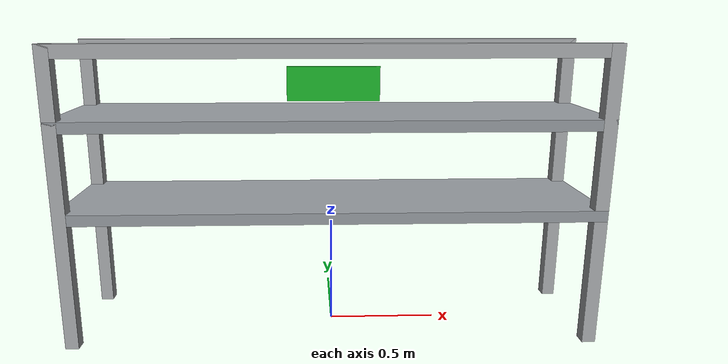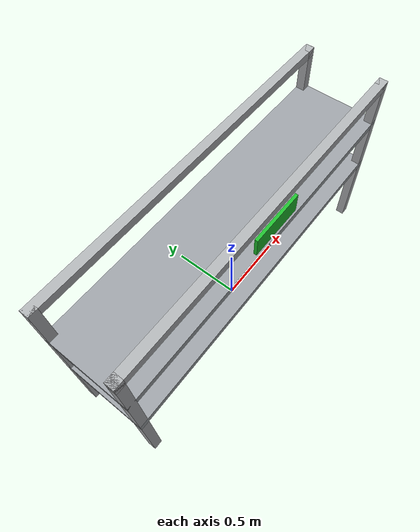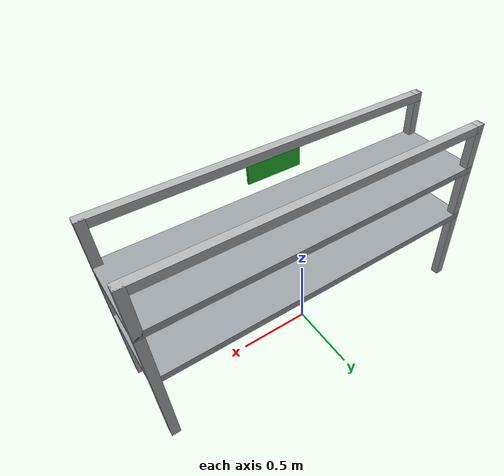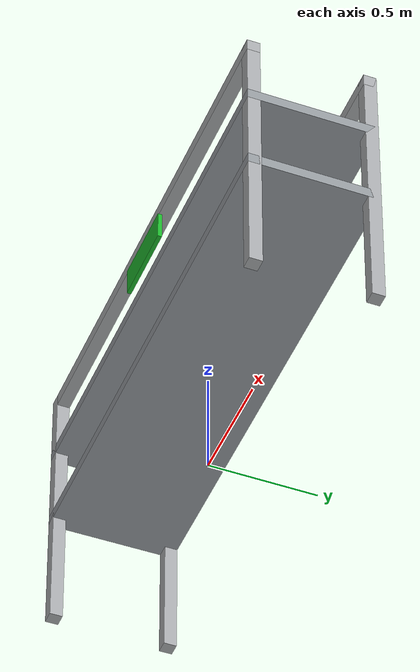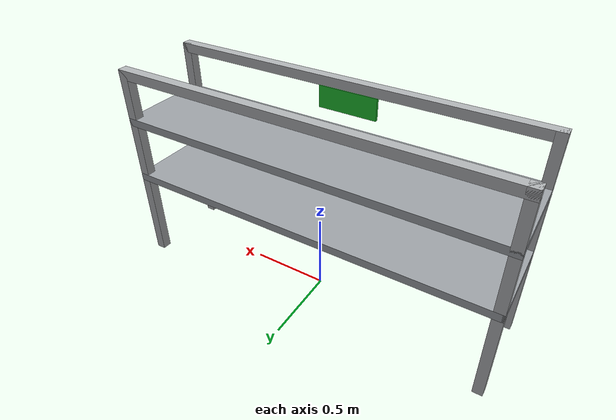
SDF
<?xml version="1.0"?>
<sdf version="1.10">
  <model name="l_workcell_rack">
    <static>true</static>
    <link name="rack">
      <collision name="lower_deck_collision"><pose>0 0 0.60 0 0 0</pose><geometry><box><size>2.40 0.60 0.05</size></box></geometry></collision>
      <visual name="lower_deck_visual"><pose>0 0 0.60 0 0 0</pose><geometry><box><size>2.40 0.60 0.05</size></box></geometry><material><ambient>0.32 0.34 0.36 1</ambient><diffuse>0.60 0.62 0.64 1</diffuse><specular>0.35 0.35 0.35 1</specular></material></visual>

      <collision name="upper_deck_collision"><pose>0 0 1.00 0 0 0</pose><geometry><box><size>2.40 0.60 0.05</size></box></geometry></collision>
      <visual name="upper_deck_visual"><pose>0 0 1.00 0 0 0</pose><geometry><box><size>2.40 0.60 0.05</size></box></geometry><material><ambient>0.32 0.34 0.36 1</ambient><diffuse>0.60 0.62 0.64 1</diffuse><specular>0.35 0.35 0.35 1</specular></material></visual>

      <collision name="post_fl_collision"><pose>-1.17 -0.27 0.67 0 0 0</pose><geometry><box><size>0.06 0.06 1.34</size></box></geometry></collision>
      <visual name="post_fl_visual"><pose>-1.17 -0.27 0.67 0 0 0</pose><geometry><box><size>0.06 0.06 1.34</size></box></geometry><material><ambient>0.36 0.37 0.38 1</ambient><diffuse>0.68 0.69 0.70 1</diffuse></material></visual>
      <collision name="post_fr_collision"><pose>1.17 -0.27 0.67 0 0 0</pose><geometry><box><size>0.06 0.06 1.34</size></box></geometry></collision>
      <visual name="post_fr_visual"><pose>1.17 -0.27 0.67 0 0 0</pose><geometry><box><size>0.06 0.06 1.34</size></box></geometry><material><ambient>0.36 0.37 0.38 1</ambient><diffuse>0.68 0.69 0.70 1</diffuse></material></visual>
      <collision name="post_rl_collision"><pose>-1.17 0.27 0.67 0 0 0</pose><geometry><box><size>0.06 0.06 1.34</size></box></geometry></collision>
      <visual name="post_rl_visual"><pose>-1.17 0.27 0.67 0 0 0</pose><geometry><box><size>0.06 0.06 1.34</size></box></geometry><material><ambient>0.36 0.37 0.38 1</ambient><diffuse>0.68 0.69 0.70 1</diffuse></material></visual>
      <collision name="post_rr_collision"><pose>1.17 0.27 0.67 0 0 0</pose><geometry><box><size>0.06 0.06 1.34</size></box></geometry></collision>
      <visual name="post_rr_visual"><pose>1.17 0.27 0.67 0 0 0</pose><geometry><box><size>0.06 0.06 1.34</size></box></geometry><material><ambient>0.36 0.37 0.38 1</ambient><diffuse>0.68 0.69 0.70 1</diffuse></material></visual>

      <collision name="top_front_collision"><pose>0 -0.27 1.31 0 0 0</pose><geometry><box><size>2.40 0.06 0.06</size></box></geometry></collision>
      <visual name="top_front_visual"><pose>0 -0.27 1.31 0 0 0</pose><geometry><box><size>2.40 0.06 0.06</size></box></geometry><material><ambient>0.36 0.37 0.38 1</ambient><diffuse>0.68 0.69 0.70 1</diffuse></material></visual>
      <collision name="top_rear_collision"><pose>0 0.27 1.31 0 0 0</pose><geometry><box><size>2.40 0.06 0.06</size></box></geometry></collision>
      <visual name="top_rear_visual"><pose>0 0.27 1.31 0 0 0</pose><geometry><box><size>2.40 0.06 0.06</size></box></geometry><material><ambient>0.36 0.37 0.38 1</ambient><diffuse>0.68 0.69 0.70 1</diffuse></material></visual>

      <visual name="station_marker"><pose>0 -0.305 1.18 0 0 0</pose><geometry><box><size>0.38 0.02 0.14</size></box></geometry><material><ambient>0.08 0.48 0.12 1</ambient><diffuse>0.12 0.74 0.18 1</diffuse></material></visual>
    </link>
  </model>
</sdf>
